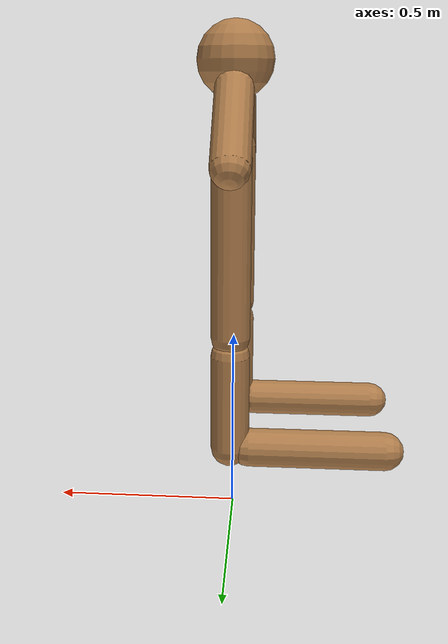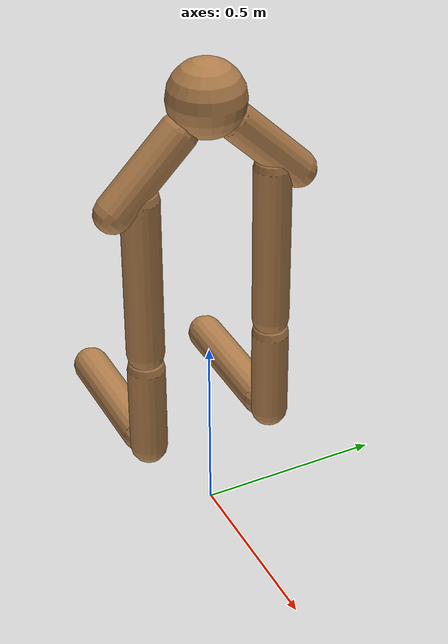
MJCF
<?xml version='1.0' encoding='UTF-8'?>
<!-- Universal Animal Template: unimal -->
<mujoco model="unimal">
  <compiler angle="degree"/>
  <size njmax="2000" nconmax="500"/>
  <option timestep=".005">
    <flag filterparent="disable"/>
  </option>
  <!-- Common defaults to make search space tractable -->
  <default>
    <!-- Define motor defaults -->
    <motor ctrlrange="-1 1" ctrllimited="true"/>
    <!-- Define joint defaults -->
    <default class="normal_joint">
      <joint type="hinge" damping="1" stiffness="1" armature="1" limited="true" range="-120 120" solimplimit="0 0.99 0.01"/>
    </default>
    <default class="walker_joint">
      <joint type="hinge" damping="0.2" stiffness="1" armature=".01" limited="true" range="-120 120" solimplimit="0 0.99 0.01"/>
    </default>
    <default class="stiff_joint">
      <joint type="hinge" damping="5" stiffness="10" armature=".01" limited="true" solimplimit="0 0.99 0.01"/>
    </default>
    <default class="free">
      <joint limited="false" damping="0" armature="0" stiffness="0"/>
    </default>
    <default class="growth_site">
      <site size="1e-6 1e-6 1e-6"/>
    </default>
    <default class="torso_growth_site">
      <site size="1e-6 1e-6 1e-6"/>
    </default>
    <default class="mirror_growth_site">
      <site size="1e-6 1e-6 1e-6"/>
    </default>
    <default class="btm_pos_site">
      <site size="1e-6 1e-6 1e-6"/>
    </default>
    <default class="box_face_site">
      <site size="1e-6 1e-6 1e-6"/>
    </default>
    <default class="imu_vel">
      <site type="box" size="0.05" rgba="1 0 0 0"/>
    </default>
    <default class="touch_site">
      <site group="3" rgba="0 0 1 .3"/>
    </default>
    <default class="food_site">
      <site material="food" size="0.15"/>
    </default>
    <!-- Define geom defaults -->
    <geom type="capsule" condim="3" friction="0.7 0.1 0.1" material="self"/>
  </default>
  <worldbody>
    <light diffuse="1 1 1" directional="true" exponent="1" pos="0 0 8" specular="0.1 0.1 0.1" dir="0 0 -1"/>
    <!-- Programatically generated xml goes here -->
    <body name="torso/0" pos="0 0 1.23">
      <joint name="root" type="free" class="free"/>
      <site name="root" class="imu_vel"/>
      <geom name="torso/0" type="sphere" size="0.1" condim="3" density="600"/>
      <camera name="side" pos="0 -7 2" xyaxes="1 0 0 0 1 2" mode="trackcom"/>
      <site name="torso/0" class="growth_site" pos="0 0 0"/>
      <site name="torso/btm_pos/0" class="btm_pos_site" pos="0 0 -0.1"/>
      <site name="torso/touch/0" class="touch_site" size="0.11"/>
      <site name="torso/vertical/0" class="torso_growth_site" pos="0 0 -0.1"/>
      <body name="limb/0" pos="0.0 0.07 -0.07">
        <joint name="limbx/0" type="hinge" class="normal_joint" range="-30 30" pos="0.0 -0.04 0.04" axis="1.0 0.0 0.0"/>
        <joint name="limby/0" type="hinge" class="normal_joint" range="-45 45" pos="0.0 -0.04 0.04" axis="0.0 0.7071 0.7071"/>
        <geom name="limb/0" type="capsule" fromto="0.0 0.0 0.0 0.0 0.18 -0.18" size="0.05" density="700"/>
        <site name="limb/mid/0" class="mirror_growth_site" pos="0.0 0.11 -0.11"/>
        <site name="limb/btm/0" class="mirror_growth_site" pos="0.0 0.18 -0.18"/>
        <site name="limb/btm_pos/0" class="btm_pos_site" pos="0.0 0.18 -0.18"/>
        <site name="limb/touch/0" class="touch_site" size="0.060000000000000005" fromto="0.0 0.0 0.0 0.0 0.18 -0.18" type="capsule"/>
        <body name="limb/10" pos="0.0 0.11 -0.16">
          <joint name="limby/10" type="hinge" class="normal_joint" range="-60 0" pos="0.0 0.0 0.05" axis="0.0 1.0 0.0"/>
          <geom name="limb/10" type="capsule" fromto="0.0 0.0 0.0 0.0 0.0 -0.45" size="0.05" density="700"/>
          <site name="limb/mid/10" class="mirror_growth_site" pos="0.0 0.0 -0.25"/>
          <site name="limb/btm/10" class="mirror_growth_site" pos="0.0 0.0 -0.45"/>
          <site name="limb/btm_pos/10" class="btm_pos_site" pos="0.0 0.0 -0.45"/>
          <site name="limb/touch/10" class="touch_site" size="0.060000000000000005" fromto="0.0 0.0 0.0 0.0 0.0 -0.45" type="capsule"/>
          <body name="limb/20" pos="0.0 0.0 -0.5">
            <joint name="limbx/20" type="hinge" class="normal_joint" range="-90 0" pos="0.0 0.0 0.05" axis="1.0 0.0 0.0"/>
            <joint name="limby/20" type="hinge" class="normal_joint" range="-60 60" pos="0.0 0.0 0.05" axis="0.0 1.0 0.0"/>
            <geom name="limb/20" type="capsule" fromto="0.0 0.0 0.0 0.0 0.0 -0.25" size="0.05" density="700"/>
            <site name="limb/mid/20" class="mirror_growth_site" pos="0.0 0.0 -0.15"/>
            <site name="limb/btm/20" class="mirror_growth_site" pos="0.0 0.0 -0.25"/>
            <site name="limb/btm_pos/20" class="btm_pos_site" pos="0.0 0.0 -0.3"/>
            <site name="limb/touch/20" class="touch_site" size="0.060000000000000005" fromto="0.0 0.0 0.0 0.0 0.0 -0.25" type="capsule"/>
            <body name="limb/22" pos="-0.05 0.0 -0.25">
              <joint name="limby/22" type="hinge" class="normal_joint" range="-60 30" pos="0.05 0.0 0.0" axis="0.0 1.0 0.0"/>
              <geom name="limb/22" type="capsule" fromto="0.0 0.0 0.0 -0.35 0.0 0.0" size="0.05" density="700"/>
              <site name="limb/mid/22" class="mirror_growth_site" pos="-0.2 0.0 0.0"/>
              <site name="limb/btm/22" class="mirror_growth_site" pos="-0.35 0.0 0.0"/>
              <site name="limb/btm_pos/22" class="btm_pos_site" pos="-0.4 0.0 0.0"/>
              <site name="limb/touch/22" class="touch_site" size="0.060000000000000005" fromto="0.0 0.0 0.0 -0.35 0.0 0.0" type="capsule"/>
            </body>
          </body>
        </body>
      </body>
      <body name="limb/1" pos="0.0 -0.07 -0.07">
        <joint name="limbx/1" type="hinge" class="normal_joint" range="-30 30" pos="0.0 0.04 0.04" axis="1.0 0.0 -0.0"/>
        <joint name="limby/1" type="hinge" class="normal_joint" range="-45 45" pos="0.0 0.04 0.04" axis="-0.0 0.7071 -0.7071"/>
        <geom name="limb/1" type="capsule" fromto="0.0 0.0 0.0 0.0 -0.18 -0.18" size="0.05" density="700"/>
        <site name="limb/mid/1" class="mirror_growth_site" pos="0.0 -0.11 -0.11"/>
        <site name="limb/btm/1" class="mirror_growth_site" pos="0.0 -0.18 -0.18"/>
        <site name="limb/btm_pos/1" class="btm_pos_site" pos="0.0 -0.18 -0.18"/>
        <site name="limb/touch/1" class="touch_site" size="0.060000000000000005" fromto="0.0 0.0 0.0 0.0 -0.18 -0.18" type="capsule"/>
        <body name="limb/11" pos="0.0 -0.11 -0.16">
          <joint name="limby/11" type="hinge" class="normal_joint" range="-60 0" pos="0.0 0.0 0.05" axis="0.0 1.0 0.0"/>
          <geom name="limb/11" type="capsule" fromto="0.0 0.0 0.0 0.0 0.0 -0.45" size="0.05" density="700"/>
          <site name="limb/mid/11" class="mirror_growth_site" pos="0.0 0.0 -0.25"/>
          <site name="limb/btm/11" class="mirror_growth_site" pos="0.0 0.0 -0.45"/>
          <site name="limb/btm_pos/11" class="btm_pos_site" pos="0.0 0.0 -0.45"/>
          <site name="limb/touch/11" class="touch_site" size="0.060000000000000005" fromto="0.0 0.0 0.0 0.0 0.0 -0.45" type="capsule"/>
          <body name="limb/21" pos="0.0 0.0 -0.5">
            <joint name="limbx/21" type="hinge" class="normal_joint" range="-90 0" pos="0.0 0.0 0.05" axis="1.0 0.0 0.0"/>
            <joint name="limby/21" type="hinge" class="normal_joint" range="-60 60" pos="0.0 0.0 0.05" axis="0.0 1.0 0.0"/>
            <geom name="limb/21" type="capsule" fromto="0.0 0.0 0.0 0.0 0.0 -0.25" size="0.05" density="700"/>
            <site name="limb/mid/21" class="mirror_growth_site" pos="0.0 0.0 -0.15"/>
            <site name="limb/btm/21" class="mirror_growth_site" pos="0.0 0.0 -0.25"/>
            <site name="limb/btm_pos/21" class="btm_pos_site" pos="0.0 0.0 -0.3"/>
            <site name="limb/touch/21" class="touch_site" size="0.060000000000000005" fromto="0.0 0.0 0.0 0.0 0.0 -0.25" type="capsule"/>
            <body name="limb/23" pos="-0.05 0.0 -0.25">
              <joint name="limby/23" type="hinge" class="normal_joint" range="-60 30" pos="0.05 0.0 0.0" axis="0.0 1.0 0.0"/>
              <geom name="limb/23" type="capsule" fromto="0.0 0.0 0.0 -0.35 0.0 0.0" size="0.05" density="700"/>
              <site name="limb/mid/23" class="mirror_growth_site" pos="-0.2 0.0 0.0"/>
              <site name="limb/btm/23" class="mirror_growth_site" pos="-0.35 0.0 0.0"/>
              <site name="limb/btm_pos/23" class="btm_pos_site" pos="-0.4 0.0 0.0"/>
              <site name="limb/touch/23" class="touch_site" size="0.060000000000000005" fromto="0.0 0.0 0.0 -0.35 0.0 0.0" type="capsule"/>
            </body>
          </body>
        </body>
      </body>
    </body>
  </worldbody>
  <actuator>
    <motor joint="limbx/0" gear="200" name="limbx/0"/>
    <motor joint="limby/0" gear="150" name="limby/0"/>
    <motor joint="limby/10" gear="200" name="limby/10"/>
    <motor joint="limbx/20" gear="300" name="limbx/20"/>
    <motor joint="limby/20" gear="200" name="limby/20"/>
    <motor joint="limby/22" gear="300" name="limby/22"/>
    <motor joint="limbx/1" gear="200" name="limbx/1"/>
    <motor joint="limby/1" gear="150" name="limby/1"/>
    <motor joint="limby/11" gear="200" name="limby/11"/>
    <motor joint="limbx/21" gear="300" name="limbx/21"/>
    <motor joint="limby/21" gear="200" name="limby/21"/>
    <motor joint="limby/23" gear="300" name="limby/23"/>
  </actuator>
  <sensor>
    <accelerometer name="torso_accel" site="root"/>
    <gyro name="torso_gyro" site="root"/>
    <velocimeter name="torso_vel" site="root"/>
    <subtreeangmom name="unimal_am" body="torso/0"/>
    <touch name="torso/0" site="torso/touch/0"/>
    <touch name="limb/0" site="limb/touch/0"/>
    <touch name="limb/10" site="limb/touch/10"/>
    <touch name="limb/20" site="limb/touch/20"/>
    <touch name="limb/22" site="limb/touch/22"/>
    <touch name="limb/1" site="limb/touch/1"/>
    <touch name="limb/11" site="limb/touch/11"/>
    <touch name="limb/21" site="limb/touch/21"/>
    <touch name="limb/23" site="limb/touch/23"/>
  </sensor>
  <!-- Add hfield assets -->
  <asset/>
  <!-- List of contacts to exclude -->
  <contact/>
  <!-- Define material, texture etc -->
  <asset>
    <material name="grid" texture="grid" texrepeat="1 1" texuniform="true" reflectance="0.1"/>
    <material name="hfield" texture="hfield" texrepeat="1 1" texuniform="true" reflectance="0.1"/>
    <material name="wall" texture="wall" texrepeat="1 1" texuniform="true" reflectance=".5"/>
    <material name="platform" texture="platform" texrepeat="1 1" texuniform="true" reflectance=".5"/>
    <material name="boundary" texture="boundary" texrepeat="1 1" texuniform="true" reflectance=".5"/>
    <material name="jump" texture="jump" texrepeat="1 1" texuniform="true" reflectance=".5"/>
    <material name="goal" rgba="1 0 0 1"/>
    <material name="food" rgba="0 0 1 1" emission="1"/>
    <material name="init_position" rgba="0 1 0 0.7"/>
    <material name="self" rgba=".7 .5 .3 1"/>
    <material name="self_invisible" rgba=".7 .5 .3 0"/>
    <material name="self_default" rgba=".7 .5 .3 1"/>
    <material name="self_highlight" rgba="0 .5 .3 1"/>
    <material name="effector" rgba=".7 .4 .2 1"/>
    <material name="effector_default" rgba=".7 .4 .2 1"/>
    <material name="effector_highlight" rgba="0 .5 .3 1"/>
    <material name="decoration" rgba=".3 .5 .7 1"/>
    <material name="eye" rgba="0 .2 1 1"/>
    <material name="target" rgba=".6 .3 .3 1"/>
    <material name="target_default" rgba=".6 .3 .3 1"/>
    <material name="target_highlight" rgba=".6 .3 .3 .4"/>
    <material name="site" rgba=".5 .5 .5 .3"/>
    <material name="ball" texture="ball"/>
  </asset>
  <asset>
    <texture name="grid" type="2d" builtin="checker" rgb1="0.4 0.4 0.4" rgb2="0.4 0.4 0.4" width="300" height="300" mark="edge" markrgb="0.2 0.2 0.2"/>
    <texture name="hfield" type="2d" builtin="checker" rgb1="0.4 0.4 0.4" rgb2="0.4 0.4 0.4" width="300" height="300" mark="edge" markrgb="0.2 0.2 0.2"/>
    <texture name="wall" type="2d" builtin="flat" rgb1="0.9 0.7 0" rgb2="0.9 0.7 0" width="300" height="300"/>
    <texture name="platform" type="2d" builtin="flat" rgb1="0.3 0 0.8" rgb2="0.3 0 0.8" width="300" height="300"/>
    <texture name="boundary" type="2d" builtin="flat" rgb1="0.3 0.3 0.3" rgb2="0.3 0.3 0.3" width="300" height="300"/>
    <texture name="jump" type="2d" builtin="flat" rgb1="0.3 0.3 0.3" rgb2="0.3 0.3 0.3" width="300" height="300"/>
    <texture name="skybox" type="skybox" builtin="gradient" rgb1="1 1 1" rgb2="0.6 0.6 0.6" width="800" height="800"/>
    <texture name="ball" builtin="checker" mark="cross" width="151" height="151" rgb1="0.1 0.1 0.1" rgb2="0.9 0.9 0.9" markrgb="1 1 1"/>
  </asset>
  <visual>
    <headlight ambient="0.6 0.6 0.6" diffuse="0.3 0.3 0.3" specular="0 0 0"/>
    <map znear=".01" shadowclip="0.5"/>
    <quality shadowsize="16384"/>
  </visual>
</mujoco>
